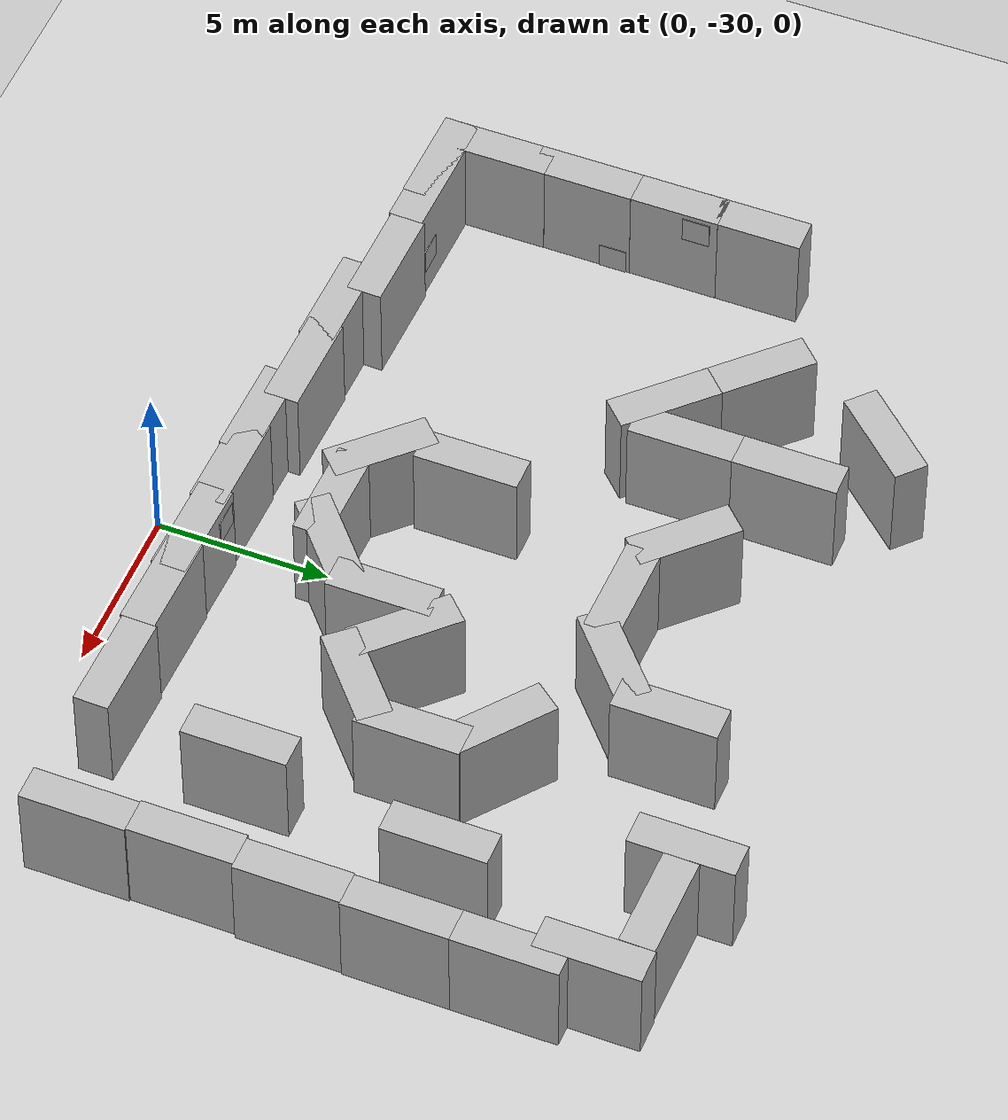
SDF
<sdf version="1.5">
 <world name="default">
  <model name="ground_plane">
   <static>1</static>
   <link name="link">
    <collision name="collision">
     <geometry><plane><normal>0 0 1</normal><size>100 100</size></plane></geometry>
     <surface><friction><ode><mu>100</mu><mu2>50</mu2></ode></friction></surface>
    </collision>
    <visual name="visual">
     <cast_shadows>0</cast_shadows>
     <geometry><plane><normal>0 0 1</normal><size>100 100</size></plane></geometry>
     <material>
      <script><uri>file://media/materials/scripts/gazebo.material</uri><name>Gazebo/Grey</name></script>
     </material>
    </visual>
   </link>
  </model>
  <model name="brick_box_3x1x3_6_clone_0_clone_6_clone_clone_0_clone_0_clone">
   <static>1</static>
   <link name="chassis">
    <pose>0 0 1.5 0 -0 0</pose>
    <collision name="collision"><geometry><box><size>3 1 3</size></box></geometry></collision>
    <visual name="visual">
     <geometry><mesh><uri>model://brick_box_3x1x3/meshes/simple_box.dae</uri><scale>3 1 3</scale></mesh></geometry>
     <material>
      <script>
       <uri>model://brick_box_3x1x3/materials/scripts</uri>
       <uri>model://brick_box_3x1x3/materials/textures</uri>
       <name>BrickBox/Diffuse</name>
      </script>
     </material>
    </visual>
   </link>
   <pose>-2.64043 -15.7624 0 0 -0 2.35483</pose>
  </model>
  <model name="brick_box_3x1x3_6_clone_0_clone_6_clone_clone_0_clone_0_clone_clone">
   <static>1</static>
   <link name="chassis">
    <pose>0 0 1.5 0 -0 0</pose>
    <collision name="collision"><geometry><box><size>3 1 3</size></box></geometry></collision>
    <visual name="visual">
     <geometry><mesh><uri>model://brick_box_3x1x3/meshes/simple_box.dae</uri><scale>3 1 3</scale></mesh></geometry>
     <material>
      <script>
       <uri>model://brick_box_3x1x3/materials/scripts</uri>
       <uri>model://brick_box_3x1x3/materials/textures</uri>
       <name>BrickBox/Diffuse</name>
      </script>
     </material>
    </visual>
   </link>
   <pose>-0.268058 -16.5959 0 0 -0 3.11976</pose>
  </model>
  <model name="brick_box_3x1x3_6_clone_0_clone_6_clone_clone_0_clone_0_clone_clone_1">
   <static>1</static>
   <link name="chassis">
    <pose>0 0 1.5 0 -0 0</pose>
    <collision name="collision"><geometry><box><size>3 1 3</size></box></geometry></collision>
    <visual name="visual">
     <geometry><mesh><uri>model://brick_box_3x1x3/meshes/simple_box.dae</uri><scale>3 1 3</scale></mesh></geometry>
     <material>
      <script>
       <uri>model://brick_box_3x1x3/materials/scripts</uri>
       <uri>model://brick_box_3x1x3/materials/textures</uri>
       <name>BrickBox/Diffuse</name>
      </script>
     </material>
    </visual>
   </link>
   <pose>3 -14 0 0 -0 1.56927</pose>
  </model>
  <model name="brick_box_3x1x3_6_clone_0_clone_6_clone_clone_0_clone_0_clone_clone_3">
   <static>1</static>
   <link name="chassis">
    <pose>0 0 1.5 0 -0 0</pose>
    <collision name="collision"><geometry><box><size>3 1 3</size></box></geometry></collision>
    <visual name="visual">
     <geometry><mesh><uri>model://brick_box_3x1x3/meshes/simple_box.dae</uri><scale>3 1 3</scale></mesh></geometry>
     <material>
      <script>
       <uri>model://brick_box_3x1x3/materials/scripts</uri>
       <uri>model://brick_box_3x1x3/materials/textures</uri>
       <name>BrickBox/Diffuse</name>
      </script>
     </material>
    </visual>
   </link>
   <pose>1.8811 -16.0067 0 0 -0 0.719961</pose>
  </model>
  <model name="brick_box_3x1x3_6_clone_0_clone_6_clone_clone_0_clone_0_clone_clone_4">
   <static>1</static>
   <link name="chassis">
    <pose>0 0 1.5 0 -0 0</pose>
    <collision name="collision"><geometry><box><size>3 1 3</size></box></geometry></collision>
    <visual name="visual">
     <geometry><mesh><uri>model://brick_box_3x1x3/meshes/simple_box.dae</uri><scale>3 1 3</scale></mesh></geometry>
     <material>
      <script>
       <uri>model://brick_box_3x1x3/materials/scripts</uri>
       <uri>model://brick_box_3x1x3/materials/textures</uri>
       <name>BrickBox/Diffuse</name>
      </script>
     </material>
    </visual>
   </link>
   <pose>-9 -16 0 0 -0 2.35483</pose>
  </model>
  <model name="brick_box_3x1x3_6_clone_0_clone_6_clone_clone_0_clone_0_clone_clone_5">
   <static>1</static>
   <link name="chassis">
    <pose>0 0 1.5 0 -0 0</pose>
    <collision name="collision"><geometry><box><size>3 1 3</size></box></geometry></collision>
    <visual name="visual">
     <geometry><mesh><uri>model://brick_box_3x1x3/meshes/simple_box.dae</uri><scale>3 1 3</scale></mesh></geometry>
     <material>
      <script>
       <uri>model://brick_box_3x1x3/materials/scripts</uri>
       <uri>model://brick_box_3x1x3/materials/textures</uri>
       <name>BrickBox/Diffuse</name>
      </script>
     </material>
    </visual>
   </link>
   <pose>-7 -18 0 0 -0 2.35483</pose>
  </model>
  <model name="brick_box_3x1x3_6_clone_0_clone_6_clone_clone_0_clone_0_clone_clone_1_clone">
   <static>1</static>
   <link name="chassis">
    <pose>0 0 1.5 0 -0 0</pose>
    <collision name="collision"><geometry><box><size>3 1 3</size></box></geometry></collision>
    <visual name="visual">
     <geometry><mesh><uri>model://brick_box_3x1x3/meshes/simple_box.dae</uri><scale>3 1 3</scale></mesh></geometry>
     <material>
      <script>
       <uri>model://brick_box_3x1x3/materials/scripts</uri>
       <uri>model://brick_box_3x1x3/materials/textures</uri>
       <name>BrickBox/Diffuse</name>
      </script>
     </material>
    </visual>
   </link>
   <pose>-6 -17 0 0 -0 1.56927</pose>
  </model>
  <model name="brick_box_3x1x3_6_clone_0_clone_6_clone_clone_0_clone_0_clone_clone_1_clone_0">
   <static>1</static>
   <link name="chassis">
    <pose>0 0 1.5 0 -0 0</pose>
    <collision name="collision"><geometry><box><size>3 1 3</size></box></geometry></collision>
    <visual name="visual">
     <geometry><mesh><uri>model://brick_box_3x1x3/meshes/simple_box.dae</uri><scale>3 1 3</scale></mesh></geometry>
     <material>
      <script>
       <uri>model://brick_box_3x1x3/materials/scripts</uri>
       <uri>model://brick_box_3x1x3/materials/textures</uri>
       <name>BrickBox/Diffuse</name>
      </script>
     </material>
    </visual>
   </link>
   <pose>-6 -14 0 0 -0 1.56927</pose>
  </model>
  <model name="brick_box_3x1x3_6_clone_0_clone_6_clone_clone_0_clone_0_clone_0_clone">
   <static>1</static>
   <link name="chassis">
    <pose>0 0 1.5 0 -0 0</pose>
    <collision name="collision"><geometry><box><size>3 1 3</size></box></geometry></collision>
    <visual name="visual">
     <geometry><mesh><uri>model://brick_box_3x1x3/meshes/simple_box.dae</uri><scale>3 1 3</scale></mesh></geometry>
     <material>
      <script>
       <uri>model://brick_box_3x1x3/materials/scripts</uri>
       <uri>model://brick_box_3x1x3/materials/textures</uri>
       <name>BrickBox/Diffuse</name>
      </script>
     </material>
    </visual>
   </link>
   <pose>-8 -12 -0 0 -0 0.824357</pose>
  </model>
  <model name="brick_box_3x1x3_6_clone_0_clone_6_clone_clone_0_clone_0_clone_clone_clone">
   <static>1</static>
   <link name="chassis">
    <pose>0 0 1.5 0 -0 0</pose>
    <collision name="collision"><geometry><box><size>3 1 3</size></box></geometry></collision>
    <visual name="visual">
     <geometry><mesh><uri>model://brick_box_3x1x3/meshes/simple_box.dae</uri><scale>3 1 3</scale></mesh></geometry>
     <material>
      <script>
       <uri>model://brick_box_3x1x3/materials/scripts</uri>
       <uri>model://brick_box_3x1x3/materials/textures</uri>
       <name>BrickBox/Diffuse</name>
      </script>
     </material>
    </visual>
   </link>
   <pose>-0.519279 -25 0 0 -0 3.11976</pose>
  </model>
  <model name="brick_box_3x1x3_6_clone_0_clone_6_clone_clone_0_clone_0_clone_clone_6">
   <static>1</static>
   <link name="chassis">
    <pose>0 0 1.5 0 -0 0</pose>
    <collision name="collision"><geometry><box><size>3 1 3</size></box></geometry></collision>
    <visual name="visual">
     <geometry><mesh><uri>model://brick_box_3x1x3/meshes/simple_box.dae</uri><scale>3 1 3</scale></mesh></geometry>
     <material>
      <script>
       <uri>model://brick_box_3x1x3/materials/scripts</uri>
       <uri>model://brick_box_3x1x3/materials/textures</uri>
       <name>BrickBox/Diffuse</name>
      </script>
     </material>
    </visual>
   </link>
   <pose>-2.48318 -24.4414 0 0 -0 2.35483</pose>
  </model>
  <model name="brick_box_3x1x3_6_clone_0_clone_6_clone_clone_0_clone_0_clone_clone_1_clone_2">
   <static>1</static>
   <link name="chassis">
    <pose>0 0 1.5 0 -0 0</pose>
    <collision name="collision"><geometry><box><size>3 1 3</size></box></geometry></collision>
    <visual name="visual">
     <geometry><mesh><uri>model://brick_box_3x1x3/meshes/simple_box.dae</uri><scale>3 1 3</scale></mesh></geometry>
     <material>
      <script>
       <uri>model://brick_box_3x1x3/materials/scripts</uri>
       <uri>model://brick_box_3x1x3/materials/textures</uri>
       <name>BrickBox/Diffuse</name>
      </script>
     </material>
    </visual>
   </link>
   <pose>-3 -22 0 0 -0 1.56927</pose>
  </model>
  <model name="brick_box_3x1x3_6_clone_0_clone_6_clone_clone_0_clone_0_clone_clone_3_clone">
   <static>1</static>
   <link name="chassis">
    <pose>0 0 1.5 0 -0 0</pose>
    <collision name="collision"><geometry><box><size>3 1 3</size></box></geometry></collision>
    <visual name="visual">
     <geometry><mesh><uri>model://brick_box_3x1x3/meshes/simple_box.dae</uri><scale>3 1 3</scale></mesh></geometry>
     <material>
      <script>
       <uri>model://brick_box_3x1x3/materials/scripts</uri>
       <uri>model://brick_box_3x1x3/materials/textures</uri>
       <name>BrickBox/Diffuse</name>
      </script>
     </material>
    </visual>
   </link>
   <pose>1 -24.4534 0 0 -0 0.719961</pose>
  </model>
  <model name="brick_box_3x1x3_6_clone_0_clone_6_clone_clone_0_clone_0_clone_clone_1_clone_2_clone">
   <static>1</static>
   <link name="chassis">
    <pose>0 0 1.5 0 -0 0</pose>
    <collision name="collision"><geometry><box><size>3 1 3</size></box></geometry></collision>
    <visual name="visual">
     <geometry><mesh><uri>model://brick_box_3x1x3/meshes/simple_box.dae</uri><scale>3 1 3</scale></mesh></geometry>
     <material>
      <script>
       <uri>model://brick_box_3x1x3/materials/scripts</uri>
       <uri>model://brick_box_3x1x3/materials/textures</uri>
       <name>BrickBox/Diffuse</name>
      </script>
     </material>
    </visual>
   </link>
   <pose>2 -22.4741 0 0 -0 1.56927</pose>
  </model>
  <model name="brick_box_3x1x3_6_clone_0_clone_6_clone_clone_0_clone_0_clone_clone_6_clone">
   <static>1</static>
   <link name="chassis">
    <pose>0 0 1.5 0 -0 0</pose>
    <collision name="collision"><geometry><box><size>3 1 3</size></box></geometry></collision>
    <visual name="visual">
     <geometry><mesh><uri>model://brick_box_3x1x3/meshes/simple_box.dae</uri><scale>3 1 3</scale></mesh></geometry>
     <material>
      <script>
       <uri>model://brick_box_3x1x3/materials/scripts</uri>
       <uri>model://brick_box_3x1x3/materials/textures</uri>
       <name>BrickBox/Diffuse</name>
      </script>
     </material>
    </visual>
   </link>
   <pose>3 -21.4598 0 0 -0 2.35483</pose>
  </model>
  <model name="brick_box_3x1x3_6_clone_0_clone_6_clone_clone_0_clone_0_clone_clone_3_clone_clone">
   <static>1</static>
   <link name="chassis">
    <pose>0 0 1.5 0 -0 0</pose>
    <collision name="collision"><geometry><box><size>3 1 3</size></box></geometry></collision>
    <visual name="visual">
     <geometry><mesh><uri>model://brick_box_3x1x3/meshes/simple_box.dae</uri><scale>3 1 3</scale></mesh></geometry>
     <material>
      <script>
       <uri>model://brick_box_3x1x3/materials/scripts</uri>
       <uri>model://brick_box_3x1x3/materials/textures</uri>
       <name>BrickBox/Diffuse</name>
      </script>
     </material>
    </visual>
   </link>
   <pose>5 -22 0 0 -0 0.719961</pose>
  </model>
  <model name="brick_box_3x1x3_6_clone_0_clone_6_clone_clone_0_clone_0_clone_clone_1_clone_3">
   <static>1</static>
   <link name="chassis">
    <pose>0 0 1.5 0 -0 0</pose>
    <collision name="collision"><geometry><box><size>3 1 3</size></box></geometry></collision>
    <visual name="visual">
     <geometry><mesh><uri>model://brick_box_3x1x3/meshes/simple_box.dae</uri><scale>3 1 3</scale></mesh></geometry>
     <material>
      <script>
       <uri>model://brick_box_3x1x3/materials/scripts</uri>
       <uri>model://brick_box_3x1x3/materials/textures</uri>
       <name>BrickBox/Diffuse</name>
      </script>
     </material>
    </visual>
   </link>
   <pose>6 -20 0 0 -0 1.56927</pose>
  </model>
  <model name="brick_box_3x1x3_6_clone_0_clone_6_clone_clone_0_clone_0_clone_clone_2_clone">
   <static>1</static>
   <link name="chassis">
    <pose>0 0 1.5 0 -0 0</pose>
    <collision name="collision"><geometry><box><size>3 1 3</size></box></geometry></collision>
    <visual name="visual">
     <geometry><mesh><uri>model://brick_box_3x1x3/meshes/simple_box.dae</uri><scale>3 1 3</scale></mesh></geometry>
     <material>
      <script>
       <uri>model://brick_box_3x1x3/materials/scripts</uri>
       <uri>model://brick_box_3x1x3/materials/textures</uri>
       <name>BrickBox/Diffuse</name>
      </script>
     </material>
    </visual>
   </link>
   <pose>5 -18 -0 0 -0 2.47586</pose>
  </model>
  <model name="brick_box_3x1x3_6_clone_0_clone_6_clone_clone_0_clone_0_clone_clone_1_clone_clone_clone_1">
   <static>1</static>
   <link name="chassis">
    <pose>0 0 1.5 0 -0 0</pose>
    <collision name="collision"><geometry><box><size>3 1 3</size></box></geometry></collision>
    <visual name="visual">
     <geometry><mesh><uri>model://brick_box_3x1x3/meshes/simple_box.dae</uri><scale>3 1 3</scale></mesh></geometry>
     <material>
      <script>
       <uri>model://brick_box_3x1x3/materials/scripts</uri>
       <uri>model://brick_box_3x1x3/materials/textures</uri>
       <name>BrickBox/Diffuse</name>
      </script>
     </material>
    </visual>
   </link>
   <pose>-14 -18 0 0 -0 1.56927</pose>
  </model>
  <model name="brick_box_3x1x3_6_clone_0_clone_6_clone_clone_0_clone_0_clone_clone_1_clone_clone_clone_2">
   <static>1</static>
   <link name="chassis">
    <pose>0 0 1.5 0 -0 0</pose>
    <collision name="collision"><geometry><box><size>3 1 3</size></box></geometry></collision>
    <visual name="visual">
     <geometry><mesh><uri>model://brick_box_3x1x3/meshes/simple_box.dae</uri><scale>3 1 3</scale></mesh></geometry>
     <material>
      <script>
       <uri>model://brick_box_3x1x3/materials/scripts</uri>
       <uri>model://brick_box_3x1x3/materials/textures</uri>
       <name>BrickBox/Diffuse</name>
      </script>
     </material>
    </visual>
   </link>
   <pose>-14 -20.4152 0 0 -0 1.56927</pose>
  </model>
  <model name="brick_box_3x1x3_6_clone_0_clone_6_clone_clone_0_clone_0_clone_clone_1_clone_clone_clone_3">
   <static>1</static>
   <link name="chassis">
    <pose>0 0 1.5 0 -0 0</pose>
    <collision name="collision"><geometry><box><size>3 1 3</size></box></geometry></collision>
    <visual name="visual">
     <geometry><mesh><uri>model://brick_box_3x1x3/meshes/simple_box.dae</uri><scale>3 1 3</scale></mesh></geometry>
     <material>
      <script>
       <uri>model://brick_box_3x1x3/materials/scripts</uri>
       <uri>model://brick_box_3x1x3/materials/textures</uri>
       <name>BrickBox/Diffuse</name>
      </script>
     </material>
    </visual>
   </link>
   <pose>-14 -23 0 0 -0 1.56927</pose>
  </model>
  <model name="brick_box_3x1x3_6_clone_0_clone_6_clone_clone_0_clone_0_clone_clone_1_clone_clone_clone_4">
   <static>1</static>
   <link name="chassis">
    <pose>0 0 1.5 0 -0 0</pose>
    <collision name="collision"><geometry><box><size>3 1 3</size></box></geometry></collision>
    <visual name="visual">
     <geometry><mesh><uri>model://brick_box_3x1x3/meshes/simple_box.dae</uri><scale>3 1 3</scale></mesh></geometry>
     <material>
      <script>
       <uri>model://brick_box_3x1x3/materials/scripts</uri>
       <uri>model://brick_box_3x1x3/materials/textures</uri>
       <name>BrickBox/Diffuse</name>
      </script>
     </material>
    </visual>
   </link>
   <pose>-14 -25.5858 0 0 -0 1.56927</pose>
  </model>
  <model name="brick_box_3x1x3_6_clone_0_clone_6_clone_clone_0_clone_0_clone_clone_clone_clone">
   <static>1</static>
   <link name="chassis">
    <pose>0 0 1.5 0 -0 0</pose>
    <collision name="collision"><geometry><box><size>3 1 3</size></box></geometry></collision>
    <visual name="visual">
     <geometry><mesh><uri>model://brick_box_3x1x3/meshes/simple_box.dae</uri><scale>3 1 3</scale></mesh></geometry>
     <material>
      <script>
       <uri>model://brick_box_3x1x3/materials/scripts</uri>
       <uri>model://brick_box_3x1x3/materials/textures</uri>
       <name>BrickBox/Diffuse</name>
      </script>
     </material>
    </visual>
   </link>
   <pose>-13 -27 0 0 -0 3.11976</pose>
  </model>
  <model name="brick_box_3x1x3_6_clone_0_clone_6_clone_clone_0_clone_0_clone_clone_clone_clone_0">
   <static>1</static>
   <link name="chassis">
    <pose>0 0 1.5 0 -0 0</pose>
    <collision name="collision"><geometry><box><size>3 1 3</size></box></geometry></collision>
    <visual name="visual">
     <geometry><mesh><uri>model://brick_box_3x1x3/meshes/simple_box.dae</uri><scale>3 1 3</scale></mesh></geometry>
     <material>
      <script>
       <uri>model://brick_box_3x1x3/materials/scripts</uri>
       <uri>model://brick_box_3x1x3/materials/textures</uri>
       <name>BrickBox/Diffuse</name>
      </script>
     </material>
    </visual>
   </link>
   <pose>-12 -27 0 0 -0 3.11976</pose>
  </model>
  <model name="brick_box_3x1x3_6_clone_0_clone_6_clone_clone_0_clone_0_clone_clone_clone_clone_1">
   <static>1</static>
   <link name="chassis">
    <pose>0 0 1.5 0 -0 0</pose>
    <collision name="collision"><geometry><box><size>3 1 3</size></box></geometry></collision>
    <visual name="visual">
     <geometry><mesh><uri>model://brick_box_3x1x3/meshes/simple_box.dae</uri><scale>3 1 3</scale></mesh></geometry>
     <material>
      <script>
       <uri>model://brick_box_3x1x3/materials/scripts</uri>
       <uri>model://brick_box_3x1x3/materials/textures</uri>
       <name>BrickBox/Diffuse</name>
      </script>
     </material>
    </visual>
   </link>
   <pose>-9 -27 0 0 -0 3.11976</pose>
  </model>
  <model name="brick_box_3x1x3_6_clone_0_clone_6_clone_clone_0_clone_0_clone_clone_clone_clone_2">
   <static>1</static>
   <link name="chassis">
    <pose>0 0 1.5 0 -0 0</pose>
    <collision name="collision"><geometry><box><size>3 1 3</size></box></geometry></collision>
    <visual name="visual">
     <geometry><mesh><uri>model://brick_box_3x1x3/meshes/simple_box.dae</uri><scale>3 1 3</scale></mesh></geometry>
     <material>
      <script>
       <uri>model://brick_box_3x1x3/materials/scripts</uri>
       <uri>model://brick_box_3x1x3/materials/textures</uri>
       <name>BrickBox/Diffuse</name>
      </script>
     </material>
    </visual>
   </link>
   <pose>-7 -27.5925 0 0 -0 3.11976</pose>
  </model>
  <model name="brick_box_3x1x3_6_clone_0_clone_6_clone_clone_0_clone_0_clone_clone_clone_clone_3">
   <static>1</static>
   <link name="chassis">
    <pose>0 0 1.5 0 -0 0</pose>
    <collision name="collision"><geometry><box><size>3 1 3</size></box></geometry></collision>
    <visual name="visual">
     <geometry><mesh><uri>model://brick_box_3x1x3/meshes/simple_box.dae</uri><scale>3 1 3</scale></mesh></geometry>
     <material>
      <script>
       <uri>model://brick_box_3x1x3/materials/scripts</uri>
       <uri>model://brick_box_3x1x3/materials/textures</uri>
       <name>BrickBox/Diffuse</name>
      </script>
     </material>
    </visual>
   </link>
   <pose>-4.59837 -27.5943 0 0 -0 3.11976</pose>
  </model>
  <model name="brick_box_3x1x3_6_clone_0_clone_6_clone_clone_0_clone_0_clone_clone_clone_clone_4">
   <static>1</static>
   <link name="chassis">
    <pose>0 0 1.5 0 -0 0</pose>
    <collision name="collision"><geometry><box><size>3 1 3</size></box></geometry></collision>
    <visual name="visual">
     <geometry><mesh><uri>model://brick_box_3x1x3/meshes/simple_box.dae</uri><scale>3 1 3</scale></mesh></geometry>
     <material>
      <script>
       <uri>model://brick_box_3x1x3/materials/scripts</uri>
       <uri>model://brick_box_3x1x3/materials/textures</uri>
       <name>BrickBox/Diffuse</name>
      </script>
     </material>
    </visual>
   </link>
   <pose>-2.49989 -28 0 0 -0 3.11976</pose>
  </model>
  <model name="brick_box_3x1x3_6_clone_0_clone_6_clone_clone_0_clone_0_clone_clone_clone_clone_5">
   <static>1</static>
   <link name="chassis">
    <pose>0 0 1.5 0 -0 0</pose>
    <collision name="collision"><geometry><box><size>3 1 3</size></box></geometry></collision>
    <visual name="visual">
     <geometry><mesh><uri>model://brick_box_3x1x3/meshes/simple_box.dae</uri><scale>3 1 3</scale></mesh></geometry>
     <material>
      <script>
       <uri>model://brick_box_3x1x3/materials/scripts</uri>
       <uri>model://brick_box_3x1x3/materials/textures</uri>
       <name>BrickBox/Diffuse</name>
      </script>
     </material>
    </visual>
   </link>
   <pose>-0.531414 -28 0 0 -0 3.11976</pose>
  </model>
  <model name="brick_box_3x1x3_6_clone_0_clone_6_clone_clone_0_clone_0_clone_clone_clone_clone_6">
   <static>1</static>
   <link name="chassis">
    <pose>0 0 1.5 0 -0 0</pose>
    <collision name="collision"><geometry><box><size>3 1 3</size></box></geometry></collision>
    <visual name="visual">
     <geometry><mesh><uri>model://brick_box_3x1x3/meshes/simple_box.dae</uri><scale>3 1 3</scale></mesh></geometry>
     <material>
      <script>
       <uri>model://brick_box_3x1x3/materials/scripts</uri>
       <uri>model://brick_box_3x1x3/materials/textures</uri>
       <name>BrickBox/Diffuse</name>
      </script>
     </material>
    </visual>
   </link>
   <pose>2 -28 0 0 -0 3.11976</pose>
  </model>
  <model name="brick_box_3x1x3_6_clone_0_clone_6_clone_clone_0_clone_0_clone_clone_clone_clone_7">
   <static>1</static>
   <link name="chassis">
    <pose>0 0 1.5 0 -0 0</pose>
    <collision name="collision"><geometry><box><size>3 1 3</size></box></geometry></collision>
    <visual name="visual">
     <geometry><mesh><uri>model://brick_box_3x1x3/meshes/simple_box.dae</uri><scale>3 1 3</scale></mesh></geometry>
     <material>
      <script>
       <uri>model://brick_box_3x1x3/materials/scripts</uri>
       <uri>model://brick_box_3x1x3/materials/textures</uri>
       <name>BrickBox/Diffuse</name>
      </script>
     </material>
    </visual>
   </link>
   <pose>4 -28 0 0 -0 3.11976</pose>
  </model>
  <model name="brick_box_3x1x3_6_clone_0_clone_6_clone_clone_0_clone_0_clone_clone_clone_clone_8">
   <static>1</static>
   <link name="chassis">
    <pose>0 0 1.5 0 -0 0</pose>
    <collision name="collision"><geometry><box><size>3 1 3</size></box></geometry></collision>
    <visual name="visual">
     <geometry><mesh><uri>model://brick_box_3x1x3/meshes/simple_box.dae</uri><scale>3 1 3</scale></mesh></geometry>
     <material>
      <script>
       <uri>model://brick_box_3x1x3/materials/scripts</uri>
       <uri>model://brick_box_3x1x3/materials/textures</uri>
       <name>BrickBox/Diffuse</name>
      </script>
     </material>
    </visual>
   </link>
   <pose>7 -28 0 0 -0 3.11976</pose>
  </model>
  <model name="brick_box_3x1x3_6_clone_0_clone_6_clone_clone_0_clone_0_clone_clone_clone_clone_9">
   <static>1</static>
   <link name="chassis">
    <pose>0 0 1.5 0 -0 0</pose>
    <collision name="collision"><geometry><box><size>3 1 3</size></box></geometry></collision>
    <visual name="visual">
     <geometry><mesh><uri>model://brick_box_3x1x3/meshes/simple_box.dae</uri><scale>3 1 3</scale></mesh></geometry>
     <material>
      <script>
       <uri>model://brick_box_3x1x3/materials/scripts</uri>
       <uri>model://brick_box_3x1x3/materials/textures</uri>
       <name>BrickBox/Diffuse</name>
      </script>
     </material>
    </visual>
   </link>
   <pose>9 -12 0 0 -0 3.11976</pose>
  </model>
  <model name="brick_box_3x1x3_6_clone_0_clone_6_clone_clone_2">
   <static>1</static>
   <link name="chassis">
    <pose>0 0 1.5 0 -0 0</pose>
    <collision name="collision"><geometry><box><size>3 1 3</size></box></geometry></collision>
    <visual name="visual">
     <geometry><mesh><uri>model://brick_box_3x1x3/meshes/simple_box.dae</uri><scale>3 1 3</scale></mesh></geometry>
     <material>
      <script>
       <uri>model://brick_box_3x1x3/materials/scripts</uri>
       <uri>model://brick_box_3x1x3/materials/textures</uri>
       <name>BrickBox/Diffuse</name>
      </script>
     </material>
    </visual>
   </link>
   <pose>7 -12 0 0 -0 1.56927</pose>
  </model>
  <model name="brick_box_3x1x3_6_clone_0_clone_6_clone_clone_3">
   <static>1</static>
   <link name="chassis">
    <pose>0 0 1.5 0 -0 0</pose>
    <collision name="collision"><geometry><box><size>3 1 3</size></box></geometry></collision>
    <visual name="visual">
     <geometry><mesh><uri>model://brick_box_3x1x3/meshes/simple_box.dae</uri><scale>3 1 3</scale></mesh></geometry>
     <material>
      <script>
       <uri>model://brick_box_3x1x3/materials/scripts</uri>
       <uri>model://brick_box_3x1x3/materials/textures</uri>
       <name>BrickBox/Diffuse</name>
      </script>
     </material>
    </visual>
   </link>
   <pose>8 -24 0 0 -0 1.56927</pose>
  </model>
  <model name="brick_box_3x1x3_6_clone_0_clone_6_clone_clone_4">
   <static>1</static>
   <link name="chassis">
    <pose>0 0 1.5 0 -0 0</pose>
    <collision name="collision"><geometry><box><size>3 1 3</size></box></geometry></collision>
    <visual name="visual">
     <geometry><mesh><uri>model://brick_box_3x1x3/meshes/simple_box.dae</uri><scale>3 1 3</scale></mesh></geometry>
     <material>
      <script>
       <uri>model://brick_box_3x1x3/materials/scripts</uri>
       <uri>model://brick_box_3x1x3/materials/textures</uri>
       <name>BrickBox/Diffuse</name>
      </script>
     </material>
    </visual>
   </link>
   <pose>9 -18 0 0 -0 1.56927</pose>
  </model>
  <model name="brick_box_3x1x3_6_clone_0_clone_6_clone_clone_5">
   <static>1</static>
   <link name="chassis">
    <pose>0 0 1.5 0 -0 0</pose>
    <collision name="collision"><geometry><box><size>3 1 3</size></box></geometry></collision>
    <visual name="visual">
     <geometry><mesh><uri>model://brick_box_3x1x3/meshes/simple_box.dae</uri><scale>3 1 3</scale></mesh></geometry>
     <material>
      <script>
       <uri>model://brick_box_3x1x3/materials/scripts</uri>
       <uri>model://brick_box_3x1x3/materials/textures</uri>
       <name>BrickBox/Diffuse</name>
      </script>
     </material>
    </visual>
   </link>
   <pose>11.4877 -27 0 0 -0 1.56927</pose>
  </model>
  <model name="brick_box_3x1x3_6_clone_0_clone_6_clone_clone_6">
   <static>1</static>
   <link name="chassis">
    <pose>0 0 1.5 0 -0 0</pose>
    <collision name="collision"><geometry><box><size>3 1 3</size></box></geometry></collision>
    <visual name="visual">
     <geometry><mesh><uri>model://brick_box_3x1x3/meshes/simple_box.dae</uri><scale>3 1 3</scale></mesh></geometry>
     <material>
      <script>
       <uri>model://brick_box_3x1x3/materials/scripts</uri>
       <uri>model://brick_box_3x1x3/materials/textures</uri>
       <name>BrickBox/Diffuse</name>
      </script>
     </material>
    </visual>
   </link>
   <pose>11.4412 -24 0 0 -0 1.56927</pose>
  </model>
  <model name="brick_box_3x1x3_6_clone_0_clone_6_clone_clone_7">
   <static>1</static>
   <link name="chassis">
    <pose>0 0 1.5 0 -0 0</pose>
    <collision name="collision"><geometry><box><size>3 1 3</size></box></geometry></collision>
    <visual name="visual">
     <geometry><mesh><uri>model://brick_box_3x1x3/meshes/simple_box.dae</uri><scale>3 1 3</scale></mesh></geometry>
     <material>
      <script>
       <uri>model://brick_box_3x1x3/materials/scripts</uri>
       <uri>model://brick_box_3x1x3/materials/textures</uri>
       <name>BrickBox/Diffuse</name>
      </script>
     </material>
    </visual>
   </link>
   <pose>11.5467 -21 0 0 -0 1.56927</pose>
  </model>
  <model name="brick_box_3x1x3_6_clone_0_clone_6_clone_clone_8">
   <static>1</static>
   <link name="chassis">
    <pose>0 0 1.5 0 -0 0</pose>
    <collision name="collision"><geometry><box><size>3 1 3</size></box></geometry></collision>
    <visual name="visual">
     <geometry><mesh><uri>model://brick_box_3x1x3/meshes/simple_box.dae</uri><scale>3 1 3</scale></mesh></geometry>
     <material>
      <script>
       <uri>model://brick_box_3x1x3/materials/scripts</uri>
       <uri>model://brick_box_3x1x3/materials/textures</uri>
       <name>BrickBox/Diffuse</name>
      </script>
     </material>
    </visual>
   </link>
   <pose>11.5921 -18 0 0 -0 1.56927</pose>
  </model>
  <model name="brick_box_3x1x3_6_clone_0_clone_6_clone_clone_9">
   <static>1</static>
   <link name="chassis">
    <pose>0 0 1.5 0 -0 0</pose>
    <collision name="collision"><geometry><box><size>3 1 3</size></box></geometry></collision>
    <visual name="visual">
     <geometry><mesh><uri>model://brick_box_3x1x3/meshes/simple_box.dae</uri><scale>3 1 3</scale></mesh></geometry>
     <material>
      <script>
       <uri>model://brick_box_3x1x3/materials/scripts</uri>
       <uri>model://brick_box_3x1x3/materials/textures</uri>
       <name>BrickBox/Diffuse</name>
      </script>
     </material>
    </visual>
   </link>
   <pose>11.5962 -15 0 0 -0 1.56927</pose>
  </model>
  <model name="brick_box_3x1x3_6_clone_0_clone_6_clone_clone_10">
   <static>1</static>
   <link name="chassis">
    <pose>0 0 1.5 0 -0 0</pose>
    <collision name="collision"><geometry><box><size>3 1 3</size></box></geometry></collision>
    <visual name="visual">
     <geometry><mesh><uri>model://brick_box_3x1x3/meshes/simple_box.dae</uri><scale>3 1 3</scale></mesh></geometry>
     <material>
      <script>
       <uri>model://brick_box_3x1x3/materials/scripts</uri>
       <uri>model://brick_box_3x1x3/materials/textures</uri>
       <name>BrickBox/Diffuse</name>
      </script>
     </material>
    </visual>
   </link>
   <pose>11 -13 0 0 -0 1.56927</pose>
  </model>
  <model name="number8">
   <pose>-6.11047 -16 2.50827 0 -0 0</pose>
   <static>1</static>
   <link name="link">
    <visual name="visual">
     <geometry><mesh><uri>model://number1/meshes/number.dae</uri></mesh></geometry>
     <material>
      <script>
       <uri>model://number8/materials/scripts</uri>
       <uri>model://number8/materials/textures</uri>
       <name>Number/Eight</name>
      </script>
     </material>
    </visual>
   </link>
  </model>
  <model name="number3_0">
   <pose>3 -14 0.4 0 -0 0</pose>
   <static>1</static>
   <link name="link">
    <visual name="visual">
     <geometry><mesh><uri>model://number1/meshes/number.dae</uri></mesh></geometry>
     <material>
      <script>
       <uri>model://number3/materials/scripts</uri>
       <uri>model://number3/materials/textures</uri>
       <name>Number/Three</name>
      </script>
     </material>
    </visual>
   </link>
  </model>
  <model name="number3_1">
   <pose>11.4362 -21 1.21459 0 -0 0</pose>
   <static>1</static>
   <link name="link">
    <visual name="visual">
     <geometry><mesh><uri>model://number1/meshes/number.dae</uri></mesh></geometry>
     <material>
      <script>
       <uri>model://number3/materials/scripts</uri>
       <uri>model://number3/materials/textures</uri>
       <name>Number/Three</name>
      </script>
     </material>
    </visual>
   </link>
  </model>
  <model name="number5_0">
   <pose>4.05669 -17.4017 1.6174 0 0 -0.684324</pose>
   <static>1</static>
   <link name="link">
    <visual name="visual">
     <geometry><mesh><uri>model://number1/meshes/number.dae</uri></mesh></geometry>
     <material>
      <script>
       <uri>model://number5/materials/scripts</uri>
       <uri>model://number5/materials/textures</uri>
       <name>Number/Five</name>
      </script>
     </material>
    </visual>
   </link>
  </model>
  <model name="number8_0">
   <pose>-13.8775 -22 0.4 0 -0 0</pose>
   <static>1</static>
   <link name="link">
    <visual name="visual">
     <geometry><mesh><uri>model://number1/meshes/number.dae</uri></mesh></geometry>
     <material>
      <script>
       <uri>model://number8/materials/scripts</uri>
       <uri>model://number8/materials/textures</uri>
       <name>Number/Eight</name>
      </script>
     </material>
    </visual>
   </link>
  </model>
  <model name="number4_1">
   <pose>1 -27.856 2.27981 0 -0 0</pose>
   <static>1</static>
   <link name="link">
    <visual name="visual">
     <geometry><mesh><uri>model://number1/meshes/number.dae</uri></mesh></geometry>
     <material>
      <script>
       <uri>model://number4/materials/scripts</uri>
       <uri>model://number4/materials/textures</uri>
       <name>Number/Four</name>
      </script>
     </material>
    </visual>
   </link>
  </model>
  <model name="number1_0">
   <pose>7.8879 -24.5632 0.4 0 -0 0</pose>
   <static>1</static>
   <link name="link">
    <visual name="visual">
     <geometry><mesh><uri>model://number1/meshes/number.dae</uri></mesh></geometry>
     <material>
      <script>
       <uri>model://number1/materials/scripts</uri>
       <uri>model://number1/materials/textures</uri>
       <name>Number/One</name>
      </script>
     </material>
    </visual>
   </link>
  </model>
  <model name="number2_1">
   <pose>9 -12.1088 1.46423 0 -0 0</pose>
   <static>1</static>
   <link name="link">
    <visual name="visual">
     <geometry><mesh><uri>model://number1/meshes/number.dae</uri></mesh></geometry>
     <material>
      <script>
       <uri>model://number2/materials/scripts</uri>
       <uri>model://number2/materials/textures</uri>
       <name>Number/Two</name>
      </script>
     </material>
    </visual>
   </link>
  </model>
  <model name="number4_2">
   <pose>-8.5322 -12.3968 2.54029 0 -0 0.867286</pose>
   <static>1</static>
   <link name="link">
    <visual name="visual">
     <geometry><mesh><uri>model://number1/meshes/number.dae</uri></mesh></geometry>
     <material>
      <script>
       <uri>model://number4/materials/scripts</uri>
       <uri>model://number4/materials/textures</uri>
       <name>Number/Four</name>
      </script>
     </material>
    </visual>
   </link>
  </model>
  <model name="number5_1">
   <pose>-11 -26.8957 1.27078 0 -0 0</pose>
   <static>1</static>
   <link name="link">
    <visual name="visual">
     <geometry><mesh><uri>model://number1/meshes/number.dae</uri></mesh></geometry>
     <material>
      <script>
       <uri>model://number5/materials/scripts</uri>
       <uri>model://number5/materials/textures</uri>
       <name>Number/Five</name>
      </script>
     </material>
    </visual>
   </link>
  </model>
  <model name="number7_0">
   <pose>-3.13302 -22.4442 1.53487 0 -0 0</pose>
   <static>1</static>
   <link name="link">
    <visual name="visual">
     <geometry><mesh><uri>model://number1/meshes/number.dae</uri></mesh></geometry>
     <material>
      <script>
       <uri>model://number7/materials/scripts</uri>
       <uri>model://number7/materials/textures</uri>
       <name>Number/Seven</name>
      </script>
     </material>
    </visual>
   </link>
  </model>
  <model name="number8_1">
   <pose>-1 -16.6977 2.41165 0 -0 0</pose>
   <static>1</static>
   <link name="link">
    <visual name="visual">
     <geometry><mesh><uri>model://number1/meshes/number.dae</uri></mesh></geometry>
     <material>
      <script>
       <uri>model://number8/materials/scripts</uri>
       <uri>model://number8/materials/textures</uri>
       <name>Number/Eight</name>
      </script>
     </material>
    </visual>
   </link>
  </model>
  <model name="number9_0">
   <pose>1.88105 -23 0.626264 0 -0 0</pose>
   <static>1</static>
   <link name="link">
    <visual name="visual">
     <geometry><mesh><uri>model://number1/meshes/number.dae</uri></mesh></geometry>
     <material>
      <script>
       <uri>model://number9/materials/scripts</uri>
       <uri>model://number9/materials/textures</uri>
       <name>Number/Nine</name>
      </script>
     </material>
    </visual>
   </link>
  </model>
  <model name="number5_2">
   <pose>-7.89082 -17.2734 2.52896 0 -0 0.829954</pose>
   <static>1</static>
   <link name="link">
    <visual name="visual">
     <geometry><mesh><uri>model://number1/meshes/number.dae</uri></mesh></geometry>
     <material>
      <script>
       <uri>model://number5/materials/scripts</uri>
       <uri>model://number5/materials/textures</uri>
       <name>Number/Five</name>
      </script>
     </material>
    </visual>
   </link>
  </model>
  <model name="number7_1">
   <pose>-13.8735 -19.5426 2.44401 0 -0 0</pose>
   <static>1</static>
   <link name="link">
    <visual name="visual">
     <geometry><mesh><uri>model://number1/meshes/number.dae</uri></mesh></geometry>
     <material>
      <script>
       <uri>model://number7/materials/scripts</uri>
       <uri>model://number7/materials/textures</uri>
       <name>Number/Seven</name>
      </script>
     </material>
    </visual>
   </link>
  </model>
 </world>
</sdf>
